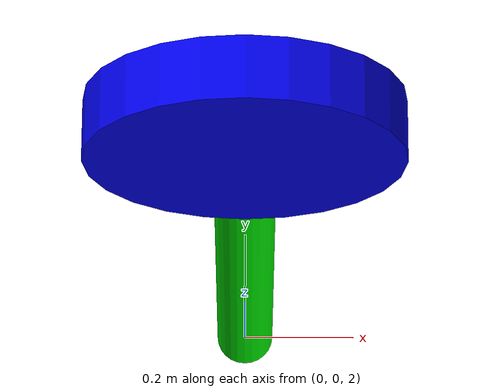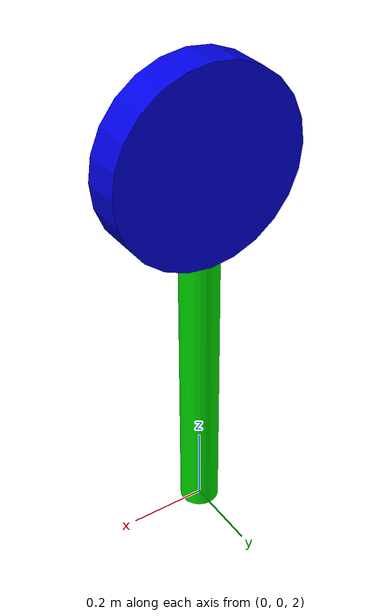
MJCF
<mujoco>

	<option timestep="0.001" integrator="RK4">
		<flag sensornoise="enable" contact="disable" energy="enable"/>
	</option>
	<asset>
		<material name="floor" texture="checks1" texrepeat="2 2" texuniform="true"/>
		<texture name="checks1" builtin="checker" type='2d' width='256' height='256' rgb1="1 1 1" rgb2="0 0 0" />
		<material name="object" texture="checks2" texrepeat="2 2" texuniform="true"/>
		<texture name="checks2" builtin="checker" type='2d' width='256' height='256' rgb1="1 0 0" rgb2="0 1 0" />
	</asset>

	<worldbody>
    <light diffuse=".5 .5 .5" pos="0 0 4" dir="0 0 -1"/>
		<geom type="plane" size="1 1 0.1" rgba=".9 0 0 1"/>
		<body pos="0 0 2.5" euler="0 180 0">
			<joint name="pin" type="hinge" pos="0 0 0.5" axis="0 -1 0" />
			<geom type="cylinder" size=".05 .5" rgba="0 .9 0 1" />
			<inertial mass="1" pos="0 0 0" diaginertia="0.1 0.1 0.1"/>
			<body pos="0 0 -0.5" euler="90 0 0">
				<joint name="pin2" type="hinge" pos="0 0 0.5" axis="0 0 1" />
				<geom type="cylinder" size=".25 .05" rgba="0 0 0.9 1" material="floor"/>
				<inertial mass="1" pos="0 0 0" diaginertia="0.1 0.1 0.1"/>
			</body>
		</body>
	</worldbody>

	<actuator>
		<motor name="torque2" joint="pin2" gear="1" ctrlrange="-1000 1000" ctrllimited="true"/>
	</actuator>

</mujoco>
